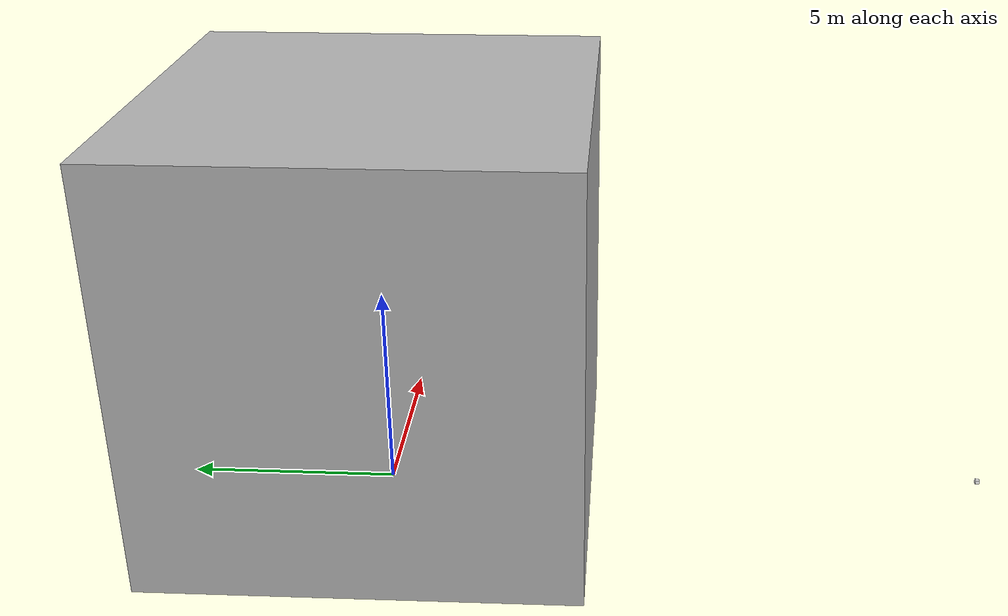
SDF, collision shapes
<sdf version='1.4'>

	<model name="DeltaRobot">
	<static>false</static>

<!-- ============================Start Links========================================  -->

<!-- =Links= these define the objects used to build the robot -->

	<link name='base'> <!-- the base of the robot -->
		<pose>0 0 0 0 0 0</pose>
		<gravity>false</gravity>

		<inertial>
			<mass>200</mass>
		</inertial>
		<collision name='collision'>
			<pose>0 0 5 0 0 0</pose>
			<geometry>
				<box>
				  <size> 10 10 10 </size>
				</box>
			</geometry>
		</collision>

		<visual name='visual'>

		  <geometry>
			<mesh><uri>base.dae</uri></mesh>
		  </geometry>

		</visual>
	</link>

	<!-- Upper arms -->
	<link name='upperArm1'>
		<pose>0.167 -14.582 0.151 1.570796327 0 1.570796327</pose>
		<gravity>false</gravity>

		<collision name='collision'>
		  <geometry>
			<box>
			  <size> 0.1 0.1 0.1</size>
			</box>
		  </geometry>
		</collision>

		<visual name='visual'>

		  <geometry>
			<mesh><uri>upperArm.dae</uri></mesh>
		  </geometry>
		  <material>
			<ambient>1 1 1 1</ambient>
			<diffuse>1 1 1 1</diffuse>
			<specular>0.1 0.1 0.1 1</specular>
			<emissive>0 0 0 0</emissive>
		  </material>
		</visual>
	</link>

 	<link name='upperArm2'>
		<pose>0.10727 2.9926 9.49426 1.570796327 0 1.570796327</pose>
		<gravity>false</gravity>

		<collision name='collision'>
		  <geometry>
			<box>
			  <size> 0.1 0.1 0.1</size>
			</box>
		  </geometry>
		</collision>

		<visual name='visual'>

		  <geometry>
			<mesh><uri>upperArm.dae</uri></mesh>
		  </geometry>
		  <material>
			<ambient>1 1 1 1</ambient>
			<diffuse>1 1 1 1</diffuse>
			<specular>0.1 0.1 0.1 1</specular>
			<emissive>0 0 0 0</emissive>
		  </material>
		</visual>
	</link>

 	<link name='upperArm3'>
		<pose>0.9194 1.5846 9.49426 1.570796327 0 -0.523598776</pose>
		<gravity>false</gravity>

		<collision name='collision'>
		  <geometry>
			<box>
			  <size> 0.1 0.1 0.1</size>
			</box>
		  </geometry>
		</collision>

		<visual name='visual'>

		  <geometry>
			<mesh><uri>upperArm.dae</uri></mesh>
		  </geometry>
		  <material>
			<ambient>1 1 1 1</ambient>
			<diffuse>1 1 1 1</diffuse>
			<specular>0.1 0.1 0.1 1</specular>
			<emissive>0 0 0 0</emissive>
		  </material>
		</visual>
	</link>

	<!-- Lower arms -->
	<link name='lowerArm1'>
		<pose>-0.26051 3.99159 9.49215 0.541052068 3.141592654 0</pose>
		<gravity>false</gravity>

		<collision name='collision'>
		  <geometry>
			<box>
			  <size> 0.1 0.1 0.1</size>
			</box>
		  </geometry>
		</collision>

		<visual name='visual'>

		  <geometry>
			<mesh><uri>lowerArm.dae</uri></mesh>
		  </geometry>
		  <material>
			<ambient>0.1 10.1 0.1 1</ambient>
			<diffuse>0.1 0.1 0.1 1</diffuse>
			<specular>0.1 0.1 0.1 1</specular>
			<emissive>0 0 0 0</emissive>
		  </material>
		</visual>
	</link>

	<link name='lowerArm2'>
		<pose>0.26191 3.99159 9.49215 0.541052068 3.141592654 0</pose>
		<gravity>false</gravity>

		<collision name='collision'>
		  <geometry>
			<box>
			  <size> 0.1 0.1 0.1</size>
			</box>
		  </geometry>
		</collision>

		<visual name='visual'>

		  <geometry>
			<mesh><uri>lowerArm.dae</uri></mesh>
		  </geometry>
		  <material>
			<ambient>0.1 10.1 0.1 1</ambient>
			<diffuse>0.1 0.1 0.1 1</diffuse>
			<specular>0.1 0.1 0.1 1</specular>
			<emissive>0 0 0 0</emissive>
		  </material>
		</visual>
	</link>

	<link name='lowerArm3'>
		<pose>1.86084 1.22328 9.49215 0.541052068 3.141592654 -2.094395102</pose>
		<gravity>false</gravity>

		<collision name='collision'>
		  <geometry>
			<box>
			  <size> 0.1 0.1 0.1</size>
			</box>
		  </geometry>
		</collision>

		<visual name='visual'>

		  <geometry>
			<mesh><uri>lowerArm.dae</uri></mesh>
		  </geometry>
		  <material>
			<ambient>0.1 10.1 0.1 1</ambient>
			<diffuse>0.1 0.1 0.1 1</diffuse>
			<specular>0.1 0.1 0.1 1</specular>
			<emissive>0 0 0 0</emissive>
		  </material>
		</visual>
	</link>

	<link name='lowerArm4'>
		<pose>1.59767 0.76795 9.49215 0.541052068 3.141592654 -2.094395102</pose>
		<gravity>false</gravity>

		<collision name='collision'>
		  <geometry>
			<box>
			  <size> 0.1 0.1 0.1</size>
			</box>
		  </geometry>
		</collision>

		<visual name='visual'>

		  <geometry>
			<mesh><uri>lowerArm.dae</uri></mesh>
		  </geometry>
		  <material>
			<ambient>0.1 10.1 0.1 1</ambient>
			<diffuse>0.1 0.1 0.1 1</diffuse>
			<specular>0.1 0.1 0.1 1</specular>
			<emissive>0 0 0 0</emissive>
		  </material>
		</visual>
	</link>

	<link name='lowerArm5'>
		<pose>-1.59767 0.76795 9.49215 0.541052068 3.141592654 2.094395102</pose>
		<gravity>false</gravity>

		<collision name='collision'>
		  <geometry>
			<box>
			  <size> 0.1 0.1 0.1</size>
			</box>
		  </geometry>
		</collision>

		<visual name='visual'>

		  <geometry>
			<mesh><uri>lowerArm.dae</uri></mesh>
		  </geometry>
		  <material>
			<ambient>0.1 10.1 0.1 1</ambient>
			<diffuse>0.1 0.1 0.1 1</diffuse>
			<specular>0.1 0.1 0.1 1</specular>
			<emissive>0 0 0 0</emissive>
		  </material>
		</visual>
	</link>

	<link name='lowerArm6'>
		<pose>-1.86084 1.22328 9.49215 0.541052068 3.141592654 2.094395102</pose>
		<gravity>false</gravity>

		<collision name='collision'>
		  <geometry>
			<box>
			  <size> 0.1 0.1 0.1</size>
			</box>
		  </geometry>
		</collision>

		<visual name='visual'>

		  <geometry>
			<mesh><uri>lowerArm.dae</uri></mesh>
		  </geometry>
		  <material>
			<ambient>0.1 10.1 0.1 1</ambient>
			<diffuse>0.1 0.1 0.1 1</diffuse>
			<specular>0.1 0.1 0.1 1</specular>
			<emissive>0 0 0 0</emissive>
		  </material>
		</visual>
	</link>

	<!-- platform -->
	<link name='effector'>
		<pose>0 1.99156 6.78392 1.570796327 0 0.523598776</pose>
		<gravity>true</gravity>
		<inertial>
			<mass>1</mass>
		</inertial>
		<collision name='collision'>
		  <geometry>
			<box>
			  <size> 0.1 0.1 0.1</size>
			</box>
		  </geometry>
		</collision>

		<visual name='visual'>

		  <geometry>
			<mesh><uri>effector.dae</uri></mesh>
		  </geometry>
		  <material>
			<ambient>1 0 0 1</ambient>
			<diffuse>1 0 0 1</diffuse>
			<specular>0.1 0.1 0.1 1</specular>
			<emissive>0 0 0 0</emissive>
		  </material>
		</visual>
	</link>

<!-- ============================End Links========================================  -->

<!-- ============================Start Joints========================================  -->

<!-- =Joint= these connect links together useing joints to simulate motors  -->

	<!-- connecting the base to a kind of hacked object to make it stay on its place -->
	<joint type="prismatic" name="BaseToWorld">
		<pose>0 0 0 0 0 0</pose>
		<child>world</child>
		<parent>base</parent>
		<axis>
			<xyz>1 0 0</xyz>
			<limit>
				<upper>0.0</upper>
				<lower>0.0</lower>
			</limit>
			<dynamics>
				<damping>20</damping>
			</dynamics>
		</axis>
	</joint>

	<!-- connecting upper arms to respective motors -->
	<joint type="revolute" name="upperArm1ToMotor1"><!-- upper arm 1 to motor 1-->
		<pose>0 0 0 0 0 0</pose>
		<child>upperArm1</child>
		<parent>base</parent>
		<axis>
			<xyz>1 0 0</xyz>
			<limit>
				<upper>0</upper>
				<lower>0</lower>
			</limit>

		</axis>
	</joint>

	<joint type="revolute" name="upperArm2ToMotor2"><!-- upper arm 2 to motor 2-->
		<pose>0 0 0 0 0 0</pose>
		<child>upperArm2</child>
		<parent>base</parent>
		<axis>
			<xyz>1 0 0</xyz>
			<limit>
				<upper>0</upper>
				<lower>0</lower>
			</limit>

		</axis>
	</joint>

	<joint type="revolute" name="upperArm3ToMotor3"><!-- upper arm 3 to motor 3-->
		<pose>0 0 0 0 0 0</pose>
		<child>upperArm3</child>
		<parent>base</parent>
		<axis>
			<xyz>-0.5 -0.8660 0</xyz>

			<limit>
				<upper>0</upper>
				<lower>0</lower>
			</limit>
		</axis>
	</joint>

	<!-- connecting lower arms to respective upper arms -->

	<joint type="ball" name="lowerArm1ToUpperArm1"><!--  lower arm 1 to upper arm 1 -->
		<pose>0 0 0 0 0 0</pose>
		<child>lowerArm1</child>
		<parent>upperArm1</parent>
		<axis>
			<xyz>0 0 1</xyz>

			<dynamics>
				<damping>100</damping>
			</dynamics>
		</axis>

		<axis2>
			<xyz>1 0 0</xyz>

			<dynamics>
				<damping>100</damping>
			</dynamics>
		</axis2>
	</joint>

	<joint type="ball" name="lowerArm2ToUpperArm1"><!--  lower arm 2 to upper arm 1 -->
		<pose>0 0 0 0 0 0</pose>
		<child>lowerArm2</child>
		<parent>upperArm1</parent>
		<axis>
			<xyz>0 0 1</xyz>

			<dynamics>
				<damping>100</damping>
			</dynamics>
		</axis>

		<axis2>
			<xyz>1 0 0</xyz>

			<dynamics>
				<damping>100</damping>
			</dynamics>
		</axis2>
	</joint>

	<joint type="ball" name="lowerArm3ToUpperArm2"><!--  lower arm 3 to upper arm 2 -->
		<pose>0 0 0 0 0 0</pose>
		<child>lowerArm3</child>
		<parent>upperArm2</parent>
		<axis>
			<xyz>0 0 1</xyz>

			<dynamics>
				<damping>100</damping>
			</dynamics>
		</axis>

		<axis2>
			<xyz>1 0 0</xyz>

			<dynamics>
				<damping>100</damping>
			</dynamics>
		</axis2>
	</joint>

	<joint type="ball" name="lowerArm4ToUpperArm2"><!--  lower arm 4 to upper arm 2 -->
		<pose>0 0 0 0 0 0</pose>
		<child>lowerArm4</child>
		<parent>upperArm2</parent>
		<axis>
			<xyz>0 0 1</xyz>

			<dynamics>
				<damping>100</damping>
			</dynamics>
		</axis>

		<axis2>
			<xyz>1 0 0</xyz>

			<dynamics>
				<damping>100</damping>
			</dynamics>
		</axis2>
	</joint>

	<joint type="ball" name="lowerArm5ToUpperArm3"><!--  lower arm 5 to upper arm 3 -->
		<pose>0 0 0 0 0 0</pose>
		<child>lowerArm5</child>
		<parent>upperArm3</parent>
		<axis>
			<xyz>0 0 1</xyz>

			<dynamics>
				<damping>100</damping>
			</dynamics>
		</axis>

		<axis2>
			<xyz>1 0 0</xyz>

			<dynamics>
				<damping>100</damping>
			</dynamics>
		</axis2>
	</joint>

	<joint type="ball" name="lowerArm6ToUpperArm3"><!--  lower arm 6 to upper arm 3 -->
		<pose>0 0 0 0 0 0</pose>
		<child>lowerArm6</child>
		<parent>upperArm3</parent>
		<axis>
			<xyz>0 0 1</xyz>

			<dynamics>
				<damping>100</damping>
			</dynamics>
		</axis>

		<axis2>
			<xyz>1 0 0</xyz>

			<dynamics>
				<damping>100</damping>
			</dynamics>
		</axis2>
	</joint>

	<joint type="ball" name="lowerArm1ToEffector1"><!--  lower arm 1 to upper arm 1 -->
		<pose>0 0 3.05 0 0 0</pose>
		<child>lowerArm1</child>
		<parent>platform</parent>
		<axis>
			<xyz>0 0 1</xyz>

			<dynamics>
				<damping>100</damping>
			</dynamics>
		</axis>

		<axis2>
			<xyz>1 0 0</xyz>

			<dynamics>
				<damping>100</damping>
			</dynamics>
		</axis2>
	</joint>

	<joint type="ball" name="lowerArm2ToEffector1"><!--  lower arm 2 to upper arm 1 -->
		<pose>0 0 3.05 0 0 0</pose>
		<child>lowerArm2</child>
		<parent>platform</parent>
		<axis>
			<xyz>0 0 1</xyz>

			<dynamics>
				<damping>100</damping>
			</dynamics>
		</axis>

		<axis2>
			<xyz>1 0 0</xyz>

			<dynamics>
				<damping>100</damping>
			</dynamics>
		</axis2>
	</joint>

	<joint type="ball" name="lowerArm3ToEffector2"><!--  lower arm 3 to upper arm 2 -->
		<pose>0 0 3.05 0 0 0</pose>
		<child>lowerArm3</child>
		<parent>platform</parent>
		<axis>
			<xyz>0 0 1</xyz>

			<dynamics>
				<damping>100</damping>
			</dynamics>
		</axis>

		<axis2>
			<xyz>1 0 0</xyz>

			<dynamics>
				<damping>100</damping>
			</dynamics>
		</axis2>
	</joint>

	<joint type="ball" name="lowerArm4ToEffector2"><!--  lower arm 4 to upper arm 2 -->
		<pose>0 0 3.05 0 0 0</pose>
		<child>lowerArm4</child>
		<parent>platform</parent>
		<axis>
			<xyz>0 0 1</xyz>

			<dynamics>
				<damping>100</damping>
			</dynamics>
		</axis>

		<axis2>
			<xyz>1 0 0</xyz>

			<dynamics>
				<damping>100</damping>
			</dynamics>
		</axis2>
	</joint>

	<joint type="ball" name="lowerArm5ToEffector3"><!--  lower arm 5 to upper arm 3 -->
		<pose>0 0 3.05 0 0 0</pose>
		<child>lowerArm5</child>
		<parent>platform</parent>
		<axis>
			<xyz>0 0 1</xyz>

			<dynamics>
				<damping>100</damping>
			</dynamics>
		</axis>

		<axis2>
			<xyz>1 0 0</xyz>

			<dynamics>
				<damping>100</damping>
			</dynamics>
		</axis2>
	</joint>

	<joint type="ball" name="lowerArm6ToEffector3"><!--  lower arm 6 to upper arm 3 -->
		<pose>0 0 3.05 0 0 0</pose>
		<child>lowerArm6</child>
		<parent>platform</parent>
		<axis>
			<xyz>0 0 1</xyz>

			<dynamics>
				<damping>100</damping>
			</dynamics>
		</axis>

		<axis2>
			<xyz>1 0 0</xyz>

			<dynamics>
				<damping>100</damping>
			</dynamics>
		</axis2>
	</joint>

  </model>
</sdf>
